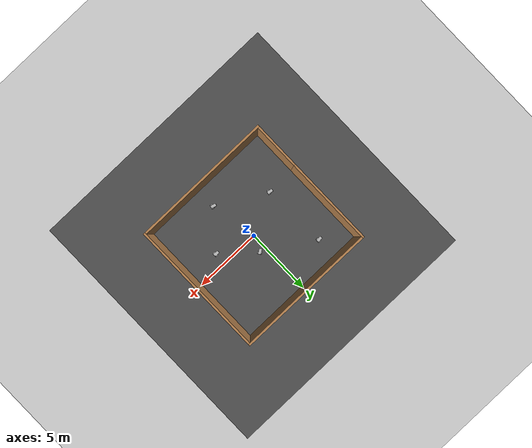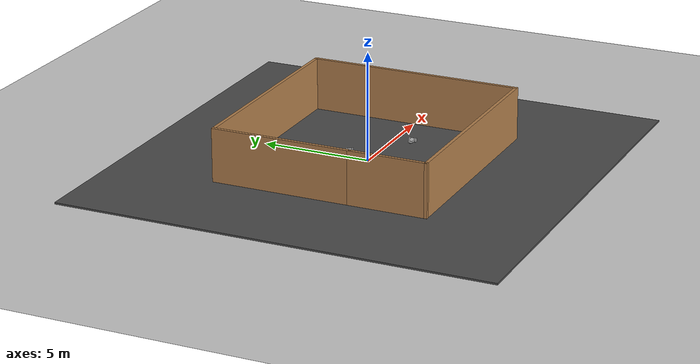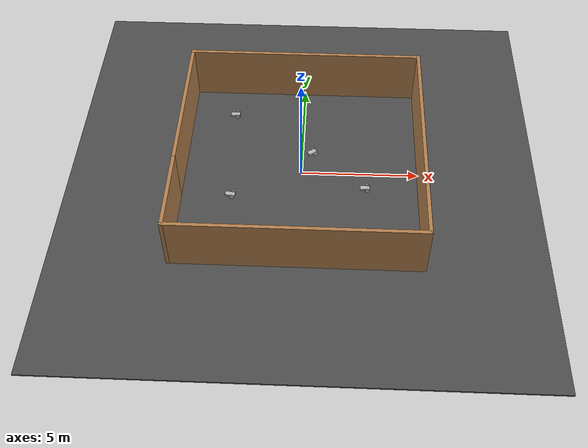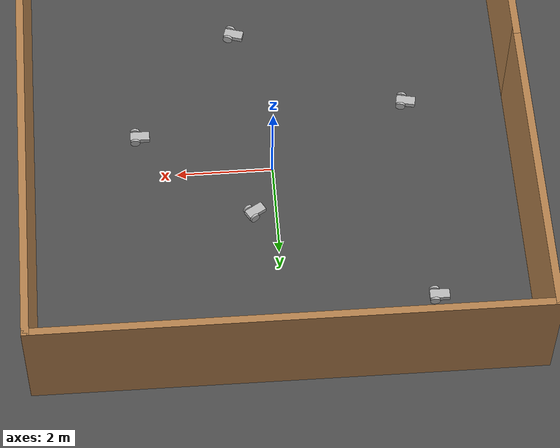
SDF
<sdf version="1.6">
 <world name="default">
  <light name="sun" type="directional">
   <pose>0 0 10 0 -0 0</pose>
   <diffuse>0.8 0.8 0.8 1</diffuse>
   <specular>0.1 0.1 0.1 1</specular>
   <attenuation>
    <range>1000</range>
    <constant>0.9</constant>
    <linear>0.01</linear>
    <quadratic>0.001</quadratic>
   </attenuation>
   <direction>-0.5 0.5 -1</direction>
  </light>
  <model name="ground_plane">
   <static>1</static>
   <link name="link">
    <collision name="collision">
     <geometry><plane><normal>0 0 1</normal><size>100 100</size></plane></geometry>
     <surface><friction><ode><mu>100</mu><mu2>50</mu2></ode></friction></surface>
    </collision>
    <visual name="visual">
     <cast_shadows>0</cast_shadows>
     <geometry><plane><normal>0 0 1</normal><size>100 100</size></plane></geometry>
     <material>
      <script><uri>file://media/materials/scripts/gazebo.material</uri><name>Gazebo/Grey</name></script>
     </material>
    </visual>
   </link>
  </model>
  <gravity>0 0 -9.8</gravity>
  <magnetic_field>6e-06 2.3e-05 -4.2e-05</magnetic_field>
  <atmosphere type="adiabatic"/>
  <physics name="default_physics" default="0" type="ode">
   <max_step_size>0.001</max_step_size>
   <real_time_factor>1</real_time_factor>
   <real_time_update_rate>1000</real_time_update_rate>
  </physics>
  <scene><ambient>0.4 0.4 0.4 1</ambient><background>0.7 0.7 0.7 1</background><shadows>1</shadows></scene>
  <spherical_coordinates>
   <surface_model>EARTH_WGS84</surface_model>
   <latitude_deg>0</latitude_deg>
   <longitude_deg>0</longitude_deg>
   <elevation>0</elevation>
   <heading_deg>0</heading_deg>
  </spherical_coordinates>
  <model name="square">
   <pose>-0.02 -0.015 0 0 -0 0</pose>
   <link name="Wall_1">
    <collision name="Wall_1_Collision">
     <geometry><box><size>6.5 0.15 2.5</size></box></geometry>
     <pose>0 0 1.25 0 -0 0</pose>
    </collision>
    <visual name="Wall_1_Visual">
     <pose>0 0 1.25 0 -0 0</pose>
     <geometry><box><size>6.5 0.15 2.5</size></box></geometry>
     <material>
      <script><uri>file://media/materials/scripts/gazebo.material</uri><name>Gazebo/Wood</name></script>
      <ambient>1 1 1 1</ambient>
     </material>
    </visual>
    <pose>-5.05 1.75 0 0 -0 1.5708</pose>
   </link>
   <link name="Wall_2">
    <collision name="Wall_2_Collision">
     <geometry><box><size>10.25 0.15 2.5</size></box></geometry>
     <pose>0 0 1.25 0 -0 0</pose>
    </collision>
    <visual name="Wall_2_Visual">
     <pose>0 0 1.25 0 -0 0</pose>
     <geometry><box><size>10.25 0.15 2.5</size></box></geometry>
     <material>
      <script><uri>file://media/materials/scripts/gazebo.material</uri><name>Gazebo/Wood</name></script>
      <ambient>1 1 1 1</ambient>
     </material>
    </visual>
    <pose>0 4.925 0 0 -0 0</pose>
   </link>
   <link name="Wall_3">
    <collision name="Wall_3_Collision">
     <geometry><box><size>10 0.15 2.5</size></box></geometry>
     <pose>0 0 1.25 0 -0 0</pose>
    </collision>
    <visual name="Wall_3_Visual">
     <pose>0 0 1.25 0 -0 0</pose>
     <geometry><box><size>10 0.15 2.5</size></box></geometry>
     <material>
      <script><uri>file://media/materials/scripts/gazebo.material</uri><name>Gazebo/Wood</name></script>
      <ambient>1 1 1 1</ambient>
     </material>
    </visual>
    <pose>5.05 0 0 0 0 -1.5708</pose>
   </link>
   <link name="Wall_5">
    <collision name="Wall_5_Collision">
     <geometry><box><size>10.25 0.15 2.5</size></box></geometry>
     <pose>0 0 1.25 0 -0 0</pose>
    </collision>
    <visual name="Wall_5_Visual">
     <pose>0 0 1.25 0 -0 0</pose>
     <geometry><box><size>10.25 0.15 2.5</size></box></geometry>
     <material>
      <script><uri>file://media/materials/scripts/gazebo.material</uri><name>Gazebo/Wood</name></script>
      <ambient>1 1 1 1</ambient>
     </material>
    </visual>
    <pose>0 -4.925 0 0 -0 3.14159</pose>
   </link>
   <link name="Wall_6">
    <collision name="Wall_6_Collision">
     <geometry><box><size>3.65 0.15 2.5</size></box></geometry>
     <pose>0 0 1.25 0 -0 0</pose>
    </collision>
    <visual name="Wall_6_Visual">
     <pose>0 0 1.25 0 -0 0</pose>
     <geometry><box><size>3.65 0.15 2.5</size></box></geometry>
     <material>
      <script><uri>file://media/materials/scripts/gazebo.material</uri><name>Gazebo/Wood</name></script>
      <ambient>1 1 1 1</ambient>
     </material>
    </visual>
    <pose>-5.05 -3.175 0 0 -0 1.5708</pose>
   </link>
   <static>1</static>
  </model>
  <model name="asphalt_plane">
   <static>1</static>
   <link name="link">
    <collision name="collision"><geometry><box><size>20 20 0.1</size></box></geometry></collision>
    <visual name="visual">
     <cast_shadows>0</cast_shadows>
     <geometry><box><size>20 20 0.1</size></box></geometry>
     <material>
      <script>
       <uri>model://asphalt_plane/materials/scripts</uri>
       <uri>model://asphalt_plane/materials/textures</uri>
       <name>vrc/asphalt</name>
      </script>
     </material>
    </visual>
   </link>
   <pose>0.044642 -0.070305 0 0 -0 0</pose>
  </model>
  <model name="my_robot">
   <static>0</static>
   <link name="chassis">
    <pose>0 0 0.1 0 -0 0</pose>
    <collision name="collision"><geometry><box><size>0.4 0.2 0.1</size></box></geometry></collision>
    <visual name="visual"><geometry><box><size>0.4 0.2 0.1</size></box></geometry></visual>
    <collision name="caster_collision">
     <pose>-0.15 0 -0.05 0 -0 0</pose>
     <geometry><sphere><radius>0.05</radius></sphere></geometry>
     <surface><friction><ode><mu>0</mu><mu2>0</mu2><slip1>1</slip1><slip2>1</slip2></ode></friction></surface>
    </collision>
    <visual name="caster_visual">
     <pose>-0.15 0 -0.05 0 -0 0</pose>
     <geometry><sphere><radius>0.05</radius></sphere></geometry>
    </visual>
    <inertial>
     <inertia><ixx>1</ixx><ixy>0</ixy><ixz>0</ixz><iyy>1</iyy><iyz>0</iyz><izz>1</izz></inertia>
     <mass>1</mass>
    </inertial>
   </link>
   <link name="left_wheel">
    <pose>0.1 0.13 0.1 -0 1.5707 1.5707</pose>
    <collision name="collision">
     <geometry><cylinder><radius>0.1</radius><length>0.05</length></cylinder></geometry>
    </collision>
    <visual name="visual">
     <geometry><cylinder><radius>0.1</radius><length>0.05</length></cylinder></geometry>
    </visual>
    <inertial>
     <inertia><ixx>1</ixx><ixy>0</ixy><ixz>0</ixz><iyy>1</iyy><iyz>0</iyz><izz>1</izz></inertia>
     <mass>1</mass>
    </inertial>
   </link>
   <link name="right_wheel">
    <pose>0.1 -0.13 0.1 -0 1.5707 1.5707</pose>
    <collision name="collision">
     <geometry><cylinder><radius>0.1</radius><length>0.05</length></cylinder></geometry>
    </collision>
    <visual name="visual">
     <geometry><cylinder><radius>0.1</radius><length>0.05</length></cylinder></geometry>
    </visual>
    <inertial>
     <inertia><ixx>1</ixx><ixy>0</ixy><ixz>0</ixz><iyy>1</iyy><iyz>0</iyz><izz>1</izz></inertia>
     <mass>1</mass>
    </inertial>
   </link>
   <link name="center">
    <pose>0 0 0.1 -0 1.5707 1.5707</pose>
    <collision name="collision">
     <geometry><cylinder><radius>0.1</radius><length>0.05</length></cylinder></geometry>
    </collision>
    <inertial>
     <inertia><ixx>1</ixx><ixy>0</ixy><ixz>0</ixz><iyy>1</iyy><iyz>0</iyz><izz>1</izz></inertia>
     <mass>1</mass>
    </inertial>
   </link>
   <joint name="center_hinge" type="revolute">
    <pose>0 0 -0.03 0 -0 0</pose>
    <child>center</child>
    <parent>chassis</parent>
    <axis>
     <xyz>0 1 0</xyz>
     <use_parent_model_frame>1</use_parent_model_frame>
     <limit><lower>-1e+16</lower><upper>1e+16</upper></limit>
     <dynamics><spring_reference>0</spring_reference><spring_stiffness>0</spring_stiffness></dynamics>
    </axis>
   </joint>
   <joint name="left_wheel_hinge" type="revolute">
    <pose>0 0 -0.03 0 -0 0</pose>
    <child>left_wheel</child>
    <parent>chassis</parent>
    <axis>
     <xyz>0 1 0</xyz>
     <use_parent_model_frame>1</use_parent_model_frame>
     <limit><lower>-1e+16</lower><upper>1e+16</upper></limit>
     <dynamics><spring_reference>0</spring_reference><spring_stiffness>0</spring_stiffness></dynamics>
    </axis>
   </joint>
   <joint name="right_wheel_hinge" type="revolute">
    <pose>0 0 0.03 0 -0 0</pose>
    <child>right_wheel</child>
    <parent>chassis</parent>
    <axis>
     <xyz>0 1 0</xyz>
     <use_parent_model_frame>1</use_parent_model_frame>
     <limit><lower>-1e+16</lower><upper>1e+16</upper></limit>
     <dynamics><spring_reference>0</spring_reference><spring_stiffness>0</spring_stiffness></dynamics>
    </axis>
   </joint>
   <pose>-3.13352 3.29866 0.050002 0 -2e-06 -0.003223</pose>
  </model>
  <model name="my_robot_0">
   <static>0</static>
   <link name="chassis">
    <pose>0 0 0.1 0 -0 0</pose>
    <collision name="collision"><geometry><box><size>0.4 0.2 0.1</size></box></geometry></collision>
    <visual name="visual"><geometry><box><size>0.4 0.2 0.1</size></box></geometry></visual>
    <collision name="caster_collision">
     <pose>-0.15 0 -0.05 0 -0 0</pose>
     <geometry><sphere><radius>0.05</radius></sphere></geometry>
     <surface><friction><ode><mu>0</mu><mu2>0</mu2><slip1>1</slip1><slip2>1</slip2></ode></friction></surface>
    </collision>
    <visual name="caster_visual">
     <pose>-0.15 0 -0.05 0 -0 0</pose>
     <geometry><sphere><radius>0.05</radius></sphere></geometry>
    </visual>
    <inertial>
     <inertia><ixx>1</ixx><ixy>0</ixy><ixz>0</ixz><iyy>1</iyy><iyz>0</iyz><izz>1</izz></inertia>
     <mass>1</mass>
    </inertial>
   </link>
   <link name="left_wheel">
    <pose>0.1 0.13 0.1 -0 1.5707 1.5707</pose>
    <collision name="collision">
     <geometry><cylinder><radius>0.1</radius><length>0.05</length></cylinder></geometry>
    </collision>
    <visual name="visual">
     <geometry><cylinder><radius>0.1</radius><length>0.05</length></cylinder></geometry>
    </visual>
    <inertial>
     <inertia><ixx>1</ixx><ixy>0</ixy><ixz>0</ixz><iyy>1</iyy><iyz>0</iyz><izz>1</izz></inertia>
     <mass>1</mass>
    </inertial>
   </link>
   <link name="right_wheel">
    <pose>0.1 -0.13 0.1 -0 1.5707 1.5707</pose>
    <collision name="collision">
     <geometry><cylinder><radius>0.1</radius><length>0.05</length></cylinder></geometry>
    </collision>
    <visual name="visual">
     <geometry><cylinder><radius>0.1</radius><length>0.05</length></cylinder></geometry>
    </visual>
    <inertial>
     <inertia><ixx>1</ixx><ixy>0</ixy><ixz>0</ixz><iyy>1</iyy><iyz>0</iyz><izz>1</izz></inertia>
     <mass>1</mass>
    </inertial>
   </link>
   <link name="center">
    <pose>0 0 0.1 -0 1.5707 1.5707</pose>
    <collision name="collision">
     <geometry><cylinder><radius>0.1</radius><length>0.05</length></cylinder></geometry>
    </collision>
    <inertial>
     <inertia><ixx>1</ixx><ixy>0</ixy><ixz>0</ixz><iyy>1</iyy><iyz>0</iyz><izz>1</izz></inertia>
     <mass>1</mass>
    </inertial>
   </link>
   <joint name="center_hinge" type="revolute">
    <pose>0 0 -0.03 0 -0 0</pose>
    <child>center</child>
    <parent>chassis</parent>
    <axis>
     <xyz>0 1 0</xyz>
     <use_parent_model_frame>1</use_parent_model_frame>
     <limit><lower>-1e+16</lower><upper>1e+16</upper></limit>
     <dynamics><spring_reference>0</spring_reference><spring_stiffness>0</spring_stiffness></dynamics>
    </axis>
   </joint>
   <joint name="left_wheel_hinge" type="revolute">
    <pose>0 0 -0.03 0 -0 0</pose>
    <child>left_wheel</child>
    <parent>chassis</parent>
    <axis>
     <xyz>0 1 0</xyz>
     <use_parent_model_frame>1</use_parent_model_frame>
     <limit><lower>-1e+16</lower><upper>1e+16</upper></limit>
     <dynamics><spring_reference>0</spring_reference><spring_stiffness>0</spring_stiffness></dynamics>
    </axis>
   </joint>
   <joint name="right_wheel_hinge" type="revolute">
    <pose>0 0 0.03 0 -0 0</pose>
    <child>right_wheel</child>
    <parent>chassis</parent>
    <axis>
     <xyz>0 1 0</xyz>
     <use_parent_model_frame>1</use_parent_model_frame>
     <limit><lower>-1e+16</lower><upper>1e+16</upper></limit>
     <dynamics><spring_reference>0</spring_reference><spring_stiffness>0</spring_stiffness></dynamics>
    </axis>
   </joint>
   <pose>-2.9376 -1.45247 0.050002 0 -1e-06 -0.190387</pose>
  </model>
  <model name="my_robot_1">
   <static>0</static>
   <link name="chassis">
    <pose>0 0 0.1 0 -0 0</pose>
    <collision name="collision"><geometry><box><size>0.4 0.2 0.1</size></box></geometry></collision>
    <visual name="visual"><geometry><box><size>0.4 0.2 0.1</size></box></geometry></visual>
    <collision name="caster_collision">
     <pose>-0.15 0 -0.05 0 -0 0</pose>
     <geometry><sphere><radius>0.05</radius></sphere></geometry>
     <surface><friction><ode><mu>0</mu><mu2>0</mu2><slip1>1</slip1><slip2>1</slip2></ode></friction></surface>
    </collision>
    <visual name="caster_visual">
     <pose>-0.15 0 -0.05 0 -0 0</pose>
     <geometry><sphere><radius>0.05</radius></sphere></geometry>
    </visual>
    <inertial>
     <inertia><ixx>1</ixx><ixy>0</ixy><ixz>0</ixz><iyy>1</iyy><iyz>0</iyz><izz>1</izz></inertia>
     <mass>1</mass>
    </inertial>
   </link>
   <link name="left_wheel">
    <pose>0.1 0.13 0.1 -0 1.5707 1.5707</pose>
    <collision name="collision">
     <geometry><cylinder><radius>0.1</radius><length>0.05</length></cylinder></geometry>
    </collision>
    <visual name="visual">
     <geometry><cylinder><radius>0.1</radius><length>0.05</length></cylinder></geometry>
    </visual>
    <inertial>
     <inertia><ixx>1</ixx><ixy>0</ixy><ixz>0</ixz><iyy>1</iyy><iyz>0</iyz><izz>1</izz></inertia>
     <mass>1</mass>
    </inertial>
   </link>
   <link name="right_wheel">
    <pose>0.1 -0.13 0.1 -0 1.5707 1.5707</pose>
    <collision name="collision">
     <geometry><cylinder><radius>0.1</radius><length>0.05</length></cylinder></geometry>
    </collision>
    <visual name="visual">
     <geometry><cylinder><radius>0.1</radius><length>0.05</length></cylinder></geometry>
    </visual>
    <inertial>
     <inertia><ixx>1</ixx><ixy>0</ixy><ixz>0</ixz><iyy>1</iyy><iyz>0</iyz><izz>1</izz></inertia>
     <mass>1</mass>
    </inertial>
   </link>
   <link name="center">
    <pose>0 0 0.1 -0 1.5707 1.5707</pose>
    <collision name="collision">
     <geometry><cylinder><radius>0.1</radius><length>0.05</length></cylinder></geometry>
    </collision>
    <inertial>
     <inertia><ixx>1</ixx><ixy>0</ixy><ixz>0</ixz><iyy>1</iyy><iyz>0</iyz><izz>1</izz></inertia>
     <mass>1</mass>
    </inertial>
   </link>
   <joint name="center_hinge" type="revolute">
    <pose>0 0 -0.03 0 -0 0</pose>
    <child>center</child>
    <parent>chassis</parent>
    <axis>
     <xyz>0 1 0</xyz>
     <use_parent_model_frame>1</use_parent_model_frame>
     <limit><lower>-1e+16</lower><upper>1e+16</upper></limit>
     <dynamics><spring_reference>0</spring_reference><spring_stiffness>0</spring_stiffness></dynamics>
    </axis>
   </joint>
   <joint name="left_wheel_hinge" type="revolute">
    <pose>0 0 -0.03 0 -0 0</pose>
    <child>left_wheel</child>
    <parent>chassis</parent>
    <axis>
     <xyz>0 1 0</xyz>
     <use_parent_model_frame>1</use_parent_model_frame>
     <limit><lower>-1e+16</lower><upper>1e+16</upper></limit>
     <dynamics><spring_reference>0</spring_reference><spring_stiffness>0</spring_stiffness></dynamics>
    </axis>
   </joint>
   <joint name="right_wheel_hinge" type="revolute">
    <pose>0 0 0.03 0 -0 0</pose>
    <child>right_wheel</child>
    <parent>chassis</parent>
    <axis>
     <xyz>0 1 0</xyz>
     <use_parent_model_frame>1</use_parent_model_frame>
     <limit><lower>-1e+16</lower><upper>1e+16</upper></limit>
     <dynamics><spring_reference>0</spring_reference><spring_stiffness>0</spring_stiffness></dynamics>
    </axis>
   </joint>
   <pose>2.7264 -0.904698 0.050002 0 -4e-06 -0.002778</pose>
  </model>
  <model name="my_robot_2">
   <static>0</static>
   <link name="chassis">
    <pose>0 0 0.1 0 -0 0</pose>
    <collision name="collision"><geometry><box><size>0.4 0.2 0.1</size></box></geometry></collision>
    <visual name="visual"><geometry><box><size>0.4 0.2 0.1</size></box></geometry></visual>
    <collision name="caster_collision">
     <pose>-0.15 0 -0.05 0 -0 0</pose>
     <geometry><sphere><radius>0.05</radius></sphere></geometry>
     <surface><friction><ode><mu>0</mu><mu2>0</mu2><slip1>1</slip1><slip2>1</slip2></ode></friction></surface>
    </collision>
    <visual name="caster_visual">
     <pose>-0.15 0 -0.05 0 -0 0</pose>
     <geometry><sphere><radius>0.05</radius></sphere></geometry>
    </visual>
    <inertial>
     <inertia><ixx>1</ixx><ixy>0</ixy><ixz>0</ixz><iyy>1</iyy><iyz>0</iyz><izz>1</izz></inertia>
     <mass>1</mass>
    </inertial>
   </link>
   <link name="left_wheel">
    <pose>0.1 0.13 0.1 -0 1.5707 1.5707</pose>
    <collision name="collision">
     <geometry><cylinder><radius>0.1</radius><length>0.05</length></cylinder></geometry>
    </collision>
    <visual name="visual">
     <geometry><cylinder><radius>0.1</radius><length>0.05</length></cylinder></geometry>
    </visual>
    <inertial>
     <inertia><ixx>1</ixx><ixy>0</ixy><ixz>0</ixz><iyy>1</iyy><iyz>0</iyz><izz>1</izz></inertia>
     <mass>1</mass>
    </inertial>
   </link>
   <link name="right_wheel">
    <pose>0.1 -0.13 0.1 -0 1.5707 1.5707</pose>
    <collision name="collision">
     <geometry><cylinder><radius>0.1</radius><length>0.05</length></cylinder></geometry>
    </collision>
    <visual name="visual">
     <geometry><cylinder><radius>0.1</radius><length>0.05</length></cylinder></geometry>
    </visual>
    <inertial>
     <inertia><ixx>1</ixx><ixy>0</ixy><ixz>0</ixz><iyy>1</iyy><iyz>0</iyz><izz>1</izz></inertia>
     <mass>1</mass>
    </inertial>
   </link>
   <link name="center">
    <pose>0 0 0.1 -0 1.5707 1.5707</pose>
    <collision name="collision">
     <geometry><cylinder><radius>0.1</radius><length>0.05</length></cylinder></geometry>
    </collision>
    <inertial>
     <inertia><ixx>1</ixx><ixy>0</ixy><ixz>0</ixz><iyy>1</iyy><iyz>0</iyz><izz>1</izz></inertia>
     <mass>1</mass>
    </inertial>
   </link>
   <joint name="center_hinge" type="revolute">
    <pose>0 0 -0.03 0 -0 0</pose>
    <child>center</child>
    <parent>chassis</parent>
    <axis>
     <xyz>0 1 0</xyz>
     <use_parent_model_frame>1</use_parent_model_frame>
     <limit><lower>-1e+16</lower><upper>1e+16</upper></limit>
     <dynamics><spring_reference>0</spring_reference><spring_stiffness>0</spring_stiffness></dynamics>
    </axis>
   </joint>
   <joint name="left_wheel_hinge" type="revolute">
    <pose>0 0 -0.03 0 -0 0</pose>
    <child>left_wheel</child>
    <parent>chassis</parent>
    <axis>
     <xyz>0 1 0</xyz>
     <use_parent_model_frame>1</use_parent_model_frame>
     <limit><lower>-1e+16</lower><upper>1e+16</upper></limit>
     <dynamics><spring_reference>0</spring_reference><spring_stiffness>0</spring_stiffness></dynamics>
    </axis>
   </joint>
   <joint name="right_wheel_hinge" type="revolute">
    <pose>0 0 0.03 0 -0 0</pose>
    <child>right_wheel</child>
    <parent>chassis</parent>
    <axis>
     <xyz>0 1 0</xyz>
     <use_parent_model_frame>1</use_parent_model_frame>
     <limit><lower>-1e+16</lower><upper>1e+16</upper></limit>
     <dynamics><spring_reference>0</spring_reference><spring_stiffness>0</spring_stiffness></dynamics>
    </axis>
   </joint>
   <pose>0.428163 1.08096 0.050002 -1e-06 -4e-06 0.536982</pose>
  </model>
  <model name="my_robot_3">
   <static>0</static>
   <link name="chassis">
    <pose>0 0 0.1 0 -0 0</pose>
    <collision name="collision"><geometry><box><size>0.4 0.2 0.1</size></box></geometry></collision>
    <visual name="visual"><geometry><box><size>0.4 0.2 0.1</size></box></geometry></visual>
    <collision name="caster_collision">
     <pose>-0.15 0 -0.05 0 -0 0</pose>
     <geometry><sphere><radius>0.05</radius></sphere></geometry>
     <surface><friction><ode><mu>0</mu><mu2>0</mu2><slip1>1</slip1><slip2>1</slip2></ode></friction></surface>
    </collision>
    <visual name="caster_visual">
     <pose>-0.15 0 -0.05 0 -0 0</pose>
     <geometry><sphere><radius>0.05</radius></sphere></geometry>
    </visual>
    <inertial>
     <inertia><ixx>1</ixx><ixy>0</ixy><ixz>0</ixz><iyy>1</iyy><iyz>0</iyz><izz>1</izz></inertia>
     <mass>1</mass>
    </inertial>
   </link>
   <link name="left_wheel">
    <pose>0.1 0.13 0.1 -0 1.5707 1.5707</pose>
    <collision name="collision">
     <geometry><cylinder><radius>0.1</radius><length>0.05</length></cylinder></geometry>
    </collision>
    <visual name="visual">
     <geometry><cylinder><radius>0.1</radius><length>0.05</length></cylinder></geometry>
    </visual>
    <inertial>
     <inertia><ixx>1</ixx><ixy>0</ixy><ixz>0</ixz><iyy>1</iyy><iyz>0</iyz><izz>1</izz></inertia>
     <mass>1</mass>
    </inertial>
   </link>
   <link name="right_wheel">
    <pose>0.1 -0.13 0.1 -0 1.5707 1.5707</pose>
    <collision name="collision">
     <geometry><cylinder><radius>0.1</radius><length>0.05</length></cylinder></geometry>
    </collision>
    <visual name="visual">
     <geometry><cylinder><radius>0.1</radius><length>0.05</length></cylinder></geometry>
    </visual>
    <inertial>
     <inertia><ixx>1</ixx><ixy>0</ixy><ixz>0</ixz><iyy>1</iyy><iyz>0</iyz><izz>1</izz></inertia>
     <mass>1</mass>
    </inertial>
   </link>
   <link name="center">
    <pose>0 0 0.1 -0 1.5707 1.5707</pose>
    <collision name="collision">
     <geometry><cylinder><radius>0.1</radius><length>0.05</length></cylinder></geometry>
    </collision>
    <inertial>
     <inertia><ixx>1</ixx><ixy>0</ixy><ixz>0</ixz><iyy>1</iyy><iyz>0</iyz><izz>1</izz></inertia>
     <mass>1</mass>
    </inertial>
   </link>
   <joint name="center_hinge" type="revolute">
    <pose>0 0 -0.03 0 -0 0</pose>
    <child>center</child>
    <parent>chassis</parent>
    <axis>
     <xyz>0 1 0</xyz>
     <use_parent_model_frame>1</use_parent_model_frame>
     <limit><lower>-1e+16</lower><upper>1e+16</upper></limit>
     <dynamics><spring_reference>0</spring_reference><spring_stiffness>0</spring_stiffness></dynamics>
    </axis>
   </joint>
   <joint name="left_wheel_hinge" type="revolute">
    <pose>0 0 -0.03 0 -0 0</pose>
    <child>left_wheel</child>
    <parent>chassis</parent>
    <axis>
     <xyz>0 1 0</xyz>
     <use_parent_model_frame>1</use_parent_model_frame>
     <limit><lower>-1e+16</lower><upper>1e+16</upper></limit>
     <dynamics><spring_reference>0</spring_reference><spring_stiffness>0</spring_stiffness></dynamics>
    </axis>
   </joint>
   <joint name="right_wheel_hinge" type="revolute">
    <pose>0 0 0.03 0 -0 0</pose>
    <child>right_wheel</child>
    <parent>chassis</parent>
    <axis>
     <xyz>0 1 0</xyz>
     <use_parent_model_frame>1</use_parent_model_frame>
     <limit><lower>-1e+16</lower><upper>1e+16</upper></limit>
     <dynamics><spring_reference>0</spring_reference><spring_stiffness>0</spring_stiffness></dynamics>
    </axis>
   </joint>
   <pose>0.597355 -3.42892 0.049993 -2e-06 -3e-06 -0.273319</pose>
  </model>
 </world>
</sdf>
